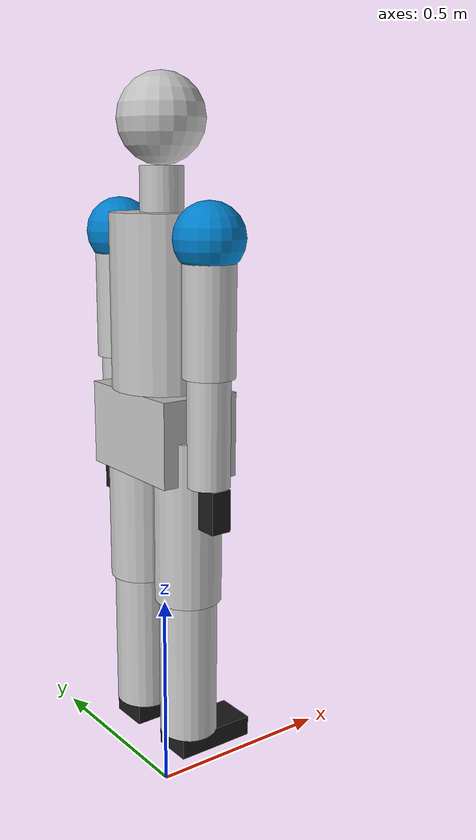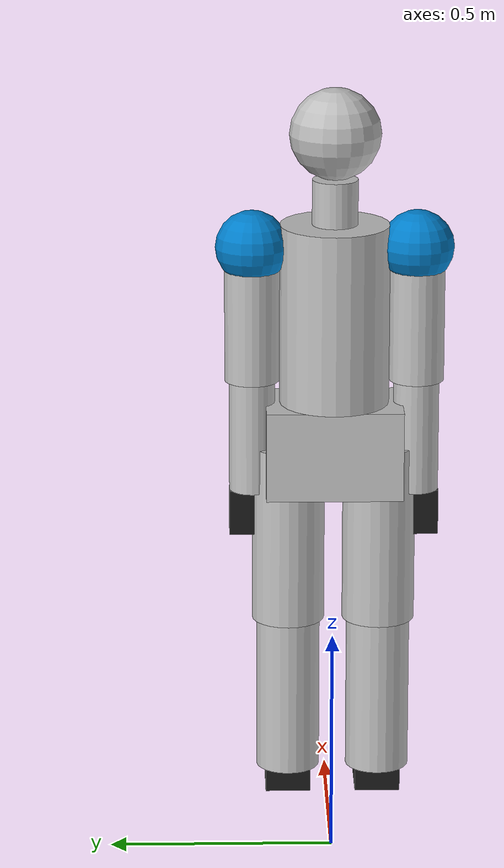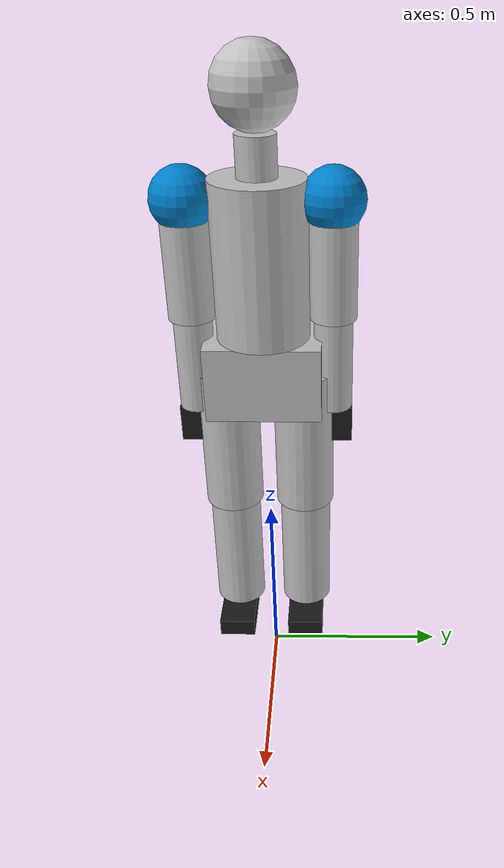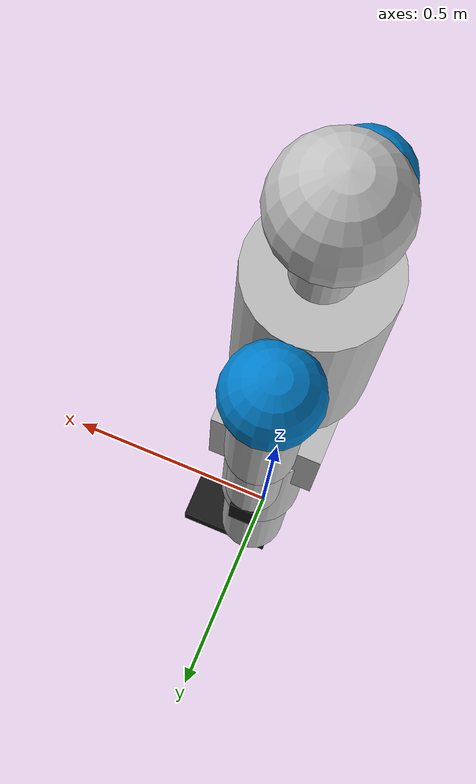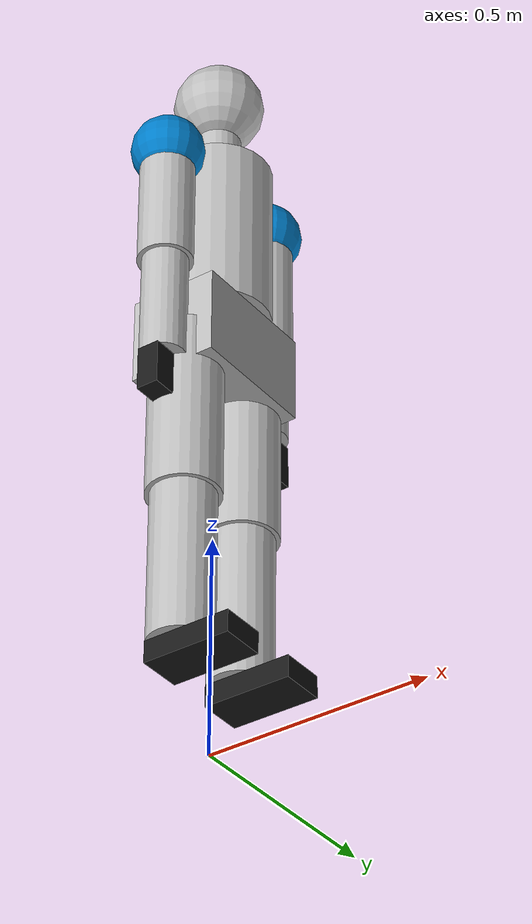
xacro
<?xml version="1.0"?>
<robot name="humanoid_32dof" xmlns:xacro="http://www.ros.org/wiki/xacro">
  <material name="silver"><color rgba="0.75 0.75 0.75 1.0"/></material>
  <material name="blue"><color rgba="0.0 0.5 0.8 1.0"/></material>
  <material name="black"><color rgba="0.1 0.1 0.1 1.0"/></material>

  <link name="world"/>

  <!-- VIRTUAL X (Forward/Back) -->
  <link name="virtual_x_link"/>
  <joint name="virtual_root_x" type="prismatic">
    <parent link="world"/>
    <child link="virtual_x_link"/>
    <origin xyz="0 0 0" rpy="0 0 0"/>
    <axis xyz="1 0 0"/> <limit lower="-5.0" upper="5.0" effort="1000" velocity="1.0"/>
  </joint>

  <!-- VIRTUAL Y (Left/Right) -->
  <link name="virtual_y_link"/>
  <joint name="virtual_root_y" type="prismatic">
    <parent link="virtual_x_link"/>
    <child link="virtual_y_link"/>
    <origin xyz="0 0 0" rpy="0 0 0"/>
    <axis xyz="0 1 0"/> <limit lower="-5.0" upper="5.0" effort="1000" velocity="1.0"/>
  </joint>

  <!-- VIRTUAL Z (Up/Down - Crouch) -->
  <joint name="virtual_root_z" type="prismatic">
    <parent link="virtual_y_link"/>
    <child link="base_link"/>
    <origin xyz="0 0 0.95" rpy="0 0 0"/>
    <axis xyz="0 0 1"/> <limit lower="-1.0" upper="1.0" effort="1000" velocity="1.0"/>
  </joint>

  <link name="base_link"><visual><geometry><box size="0.2 0.3 0.2"/></geometry><material name="silver"/></visual></link>
  <link name="torso"><visual><geometry><cylinder radius="0.12" length="0.4"/></geometry><origin xyz="0 0 0.2"/><material name="silver"/></visual></link>
  <joint name="waist_yaw" type="revolute"><parent link="base_link"/><child link="torso"/><origin xyz="0 0 0.1"/><axis xyz="0 0 1"/><limit lower="-1.57" upper="1.57" effort="100" velocity="1.0"/></joint>

  <link name="neck_link"><visual><geometry><cylinder radius="0.05" length="0.1"/></geometry><origin xyz="0 0 0.05"/><material name="silver"/></visual></link>
  <joint name="neck_pitch" type="revolute"><parent link="torso"/><child link="neck_link"/><origin xyz="0 0 0.4"/><axis xyz="0 1 0"/><limit lower="-0.5" upper="0.5" effort="10" velocity="1.0"/></joint>
  <link name="head"><visual><geometry><sphere radius="0.1"/></geometry><origin xyz="0 0 0.1"/><material name="silver"/></visual></link>
  <joint name="neck_yaw" type="revolute"><parent link="neck_link"/><child link="head"/><origin xyz="0 0 0.1"/><axis xyz="0 0 1"/><limit lower="-1.0" upper="1.0" effort="10" velocity="1.0"/></joint>

  <xacro:macro name="arm" params="side reflect">
    <link name="${side}_shoulder_link"><visual><geometry><sphere radius="0.08"/></geometry><material name="blue"/></visual></link>
    <joint name="${side}_shoulder_roll" type="revolute"><parent link="torso"/><child link="${side}_shoulder_link"/><origin xyz="0 ${reflect * 0.18} 0.35"/><axis xyz="1 0 0"/><limit lower="-1.57" upper="1.57" effort="50" velocity="1.5"/></joint>
    <link name="${side}_upper_arm"><visual><geometry><cylinder radius="0.06" length="0.3"/></geometry><origin xyz="0 0 -0.15"/><material name="silver"/></visual></link>
    <joint name="${side}_shoulder_pitch" type="revolute"><parent link="${side}_shoulder_link"/><child link="${side}_upper_arm"/><axis xyz="0 1 0"/><limit lower="-2.0" upper="2.0" effort="50" velocity="1.5"/></joint>
    <link name="${side}_forearm"><visual><geometry><cylinder radius="0.05" length="0.25"/></geometry><origin xyz="0 0 -0.125"/><material name="silver"/></visual></link>
    <joint name="${side}_elbow_pitch" type="revolute"><parent link="${side}_upper_arm"/><child link="${side}_forearm"/><origin xyz="0 0 -0.3"/><axis xyz="0 1 0"/><limit lower="-2.5" upper="0.0" effort="40" velocity="2.0"/></joint>
    <link name="${side}_hand"><visual><geometry><box size="0.05 0.1 0.1"/></geometry><origin xyz="0 0 -0.05"/><material name="black"/></visual></link>
    <joint name="${side}_wrist_roll" type="revolute"><parent link="${side}_forearm"/><child link="${side}_hand"/><origin xyz="0 0 -0.25"/><axis xyz="1 0 0"/><limit lower="-1.57" upper="1.57" effort="10" velocity="2.0"/></joint>
  </xacro:macro>
  <xacro:arm side="left" reflect="1"/>
  <xacro:arm side="right" reflect="-1"/>

  <xacro:macro name="leg" params="side reflect">
    <link name="${side}_thigh"><visual><geometry><cylinder radius="0.08" length="0.4"/></geometry><origin xyz="0 0 -0.2"/><material name="silver"/></visual></link>
    <joint name="${side}_hip_pitch" type="revolute"><parent link="base_link"/><child link="${side}_thigh"/><origin xyz="0 ${reflect * 0.1} 0"/><axis xyz="0 1 0"/><limit lower="-1.5" upper="1.0" effort="100" velocity="1.0"/></joint>
    <link name="${side}_shin"><visual><geometry><cylinder radius="0.07" length="0.35"/></geometry><origin xyz="0 0 -0.175"/><material name="silver"/></visual></link>
    <joint name="${side}_knee_pitch" type="revolute"><parent link="${side}_thigh"/><child link="${side}_shin"/><origin xyz="0 0 -0.4"/><axis xyz="0 1 0"/><limit lower="0.0" upper="2.5" effort="100" velocity="1.0"/></joint>
    <link name="${side}_foot"><visual><geometry><box size="0.2 0.1 0.05"/></geometry><origin xyz="0.05 0 -0.025"/><material name="black"/></visual></link>
    <joint name="${side}_ankle_pitch" type="revolute"><parent link="${side}_shin"/><child link="${side}_foot"/><origin xyz="0 0 -0.35"/><axis xyz="0 1 0"/><limit lower="-1.0" upper="1.0" effort="50" velocity="1.0"/></joint>
  </xacro:macro>
  <xacro:leg side="left" reflect="1"/>
  <xacro:leg side="right" reflect="-1"/>
</robot>
